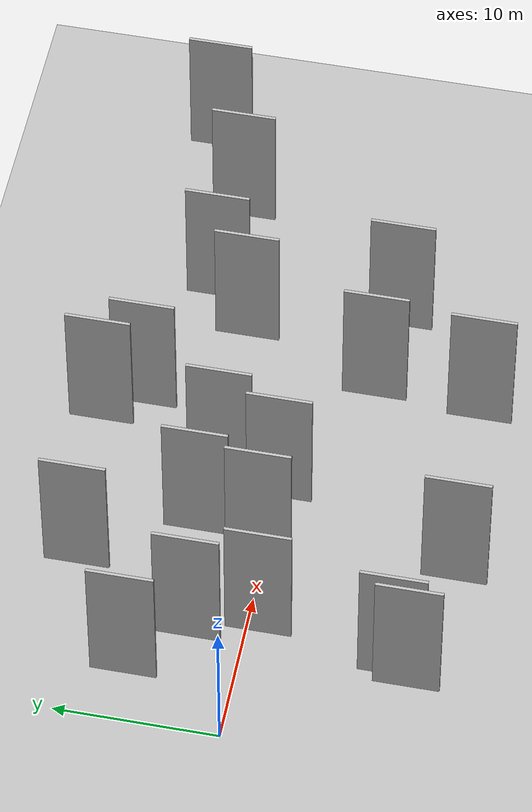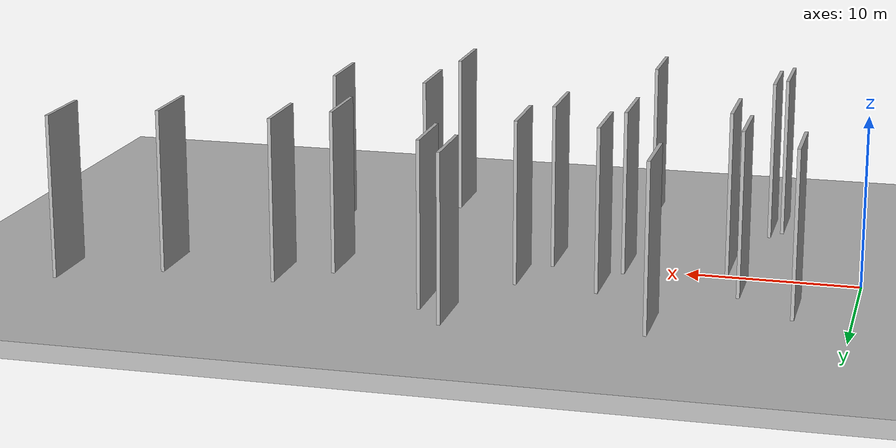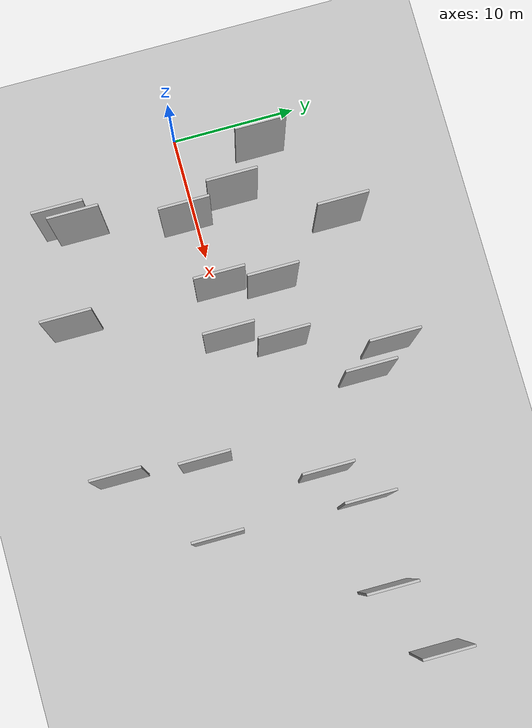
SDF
<?xml version="1.0" encoding="utf-8"?>

<sdf version="1.6">

   <world name="default">

      <gui fullscreen="0">

         <camera name="user_camera">

            <pose>-15 0 4.57585 0 0 0</pose>

            <view_controller>orbit</view_controller>

         </camera>

      </gui>

      <scene>

         <sky>

           <clouds>

             <speed>12</speed>

           </clouds>

         </sky>

         <ambient>0.4 0.4 0.4 1</ambient>

         <background>0.7 0.7 0.7 1</background>

         <shadows>1</shadows>

      </scene>

      <gravity>0 0 -9.8066</gravity>

      <magnetic_field>6e-06 2.3e-05 -4.2e-05</magnetic_field>

      <physics default="0" name="default_physics" type="ode">

         <ode>

            <solver>

               <type>quick</type>

               <iters>10</iters>

               <sor>1.0</sor>

               <use_dynamic_moi_rescaling>0</use_dynamic_moi_rescaling>

            </solver>

            <constraints>

               <cfm>0</cfm>

               <erp>0.2</erp>

               <contact_max_correcting_vel>100</contact_max_correcting_vel>

               <contact_surface_layer>0.001</contact_surface_layer>

            </constraints>

         </ode>

         <max_step_size>0.004</max_step_size>

         <real_time_factor>1</real_time_factor>

         <real_time_update_rate>250</real_time_update_rate>

      </physics>

      <light name="sun" type="directional">

         <cast_shadows>1</cast_shadows>

         <pose>0 0 10 0 0 0</pose>

         <diffuse>0.8 0.8 0.8 1</diffuse>

         <specular>0.2 0.2 0.2 1</specular>

         <attenuation>

            <range>1000</range>

            <constant>0.9</constant>

            <linear>0.01</linear>

            <quadratic>0.001</quadratic>

         </attenuation>

         <direction>-0.5 0.1 -0.9</direction>

      </light>

      <include>

         <name>ground_plane_1</name>

         <uri>model://HANNAS_ground_plane</uri>

         <pose>0 0 0  0 0 0</pose>

      </include>

      <include>

         <name>ground_plane_2</name>

         <uri>model://HANNAS_ground_plane</uri>

         <pose>100 0 0  0 0 0</pose>

      </include>

      <model name="HANNAS_wall_1">

         <static>1</static>

         <pose frame="">3.0790 6.3886 0.0 0.000000 0.000000 1.570796</pose>

         <link name="link">

            <pose frame="">0 0 5.00 0 0 0</pose>

            <collision name="collision">

               <geometry>

                  <box>

                     <size>4.00 0.2 10.00</size>

                  </box>

               </geometry>

               <max_contacts>10</max_contacts>

               <surface>

                  <contact>

                     <ode/>

                  </contact>

                  <bounce/>

                  <friction>

                     <torsional>

                        <ode/>

                     </torsional>

                     <ode/>

                  </friction>

               </surface>

            </collision>

            <visual name="visual">

               <cast_shadows>0</cast_shadows>

               <geometry>

                  <box>

                     <size>4.00 0.2 10.00</size>

                  </box>

               </geometry>

               <material>

                  <script>

                     <uri>model://HANNAS_wall/materials/scripts</uri>

                     <uri>model://HANNAS_wall/materials/textures</uri>

                     <name>vrc/HANNAS_wall</name>

                  </script>

               </material>

            </visual>

            <self_collide>0</self_collide>

            <enable_wind>0</enable_wind>

            <kinematic>0</kinematic>

         </link>

      </model>

      <model name="HANNAS_wall_2">

         <static>1</static>

         <pose frame="">21.2935 11.7495 0.0 0.000000 0.000000 1.570796</pose>

         <link name="link">

            <pose frame="">0 0 5.00 0 0 0</pose>

            <collision name="collision">

               <geometry>

                  <box>

                     <size>4.00 0.2 10.00</size>

                  </box>

               </geometry>

               <max_contacts>10</max_contacts>

               <surface>

                  <contact>

                     <ode/>

                  </contact>

                  <bounce/>

                  <friction>

                     <torsional>

                        <ode/>

                     </torsional>

                     <ode/>

                  </friction>

               </surface>

            </collision>

            <visual name="visual">

               <cast_shadows>0</cast_shadows>

               <geometry>

                  <box>

                     <size>4.00 0.2 10.00</size>

                  </box>

               </geometry>

               <material>

                  <script>

                     <uri>model://HANNAS_wall/materials/scripts</uri>

                     <uri>model://HANNAS_wall/materials/textures</uri>

                     <name>vrc/HANNAS_wall</name>

                  </script>

               </material>

            </visual>

            <self_collide>0</self_collide>

            <enable_wind>0</enable_wind>

            <kinematic>0</kinematic>

         </link>

      </model>

      <model name="HANNAS_wall_3">

         <static>1</static>

         <pose frame="">6.0209 -9.0118 0.0 0.000000 0.000000 1.570796</pose>

         <link name="link">

            <pose frame="">0 0 5.00 0 0 0</pose>

            <collision name="collision">

               <geometry>

                  <box>

                     <size>4.00 0.2 10.00</size>

                  </box>

               </geometry>

               <max_contacts>10</max_contacts>

               <surface>

                  <contact>

                     <ode/>

                  </contact>

                  <bounce/>

                  <friction>

                     <torsional>

                        <ode/>

                     </torsional>

                     <ode/>

                  </friction>

               </surface>

            </collision>

            <visual name="visual">

               <cast_shadows>0</cast_shadows>

               <geometry>

                  <box>

                     <size>4.00 0.2 10.00</size>

                  </box>

               </geometry>

               <material>

                  <script>

                     <uri>model://HANNAS_wall/materials/scripts</uri>

                     <uri>model://HANNAS_wall/materials/textures</uri>

                     <name>vrc/HANNAS_wall</name>

                  </script>

               </material>

            </visual>

            <self_collide>0</self_collide>

            <enable_wind>0</enable_wind>

            <kinematic>0</kinematic>

         </link>

      </model>

      <model name="HANNAS_wall_4">

         <static>1</static>

         <pose frame="">44.6418 9.0534 0.0 0.000000 0.000000 1.570796</pose>

         <link name="link">

            <pose frame="">0 0 5.00 0 0 0</pose>

            <collision name="collision">

               <geometry>

                  <box>

                     <size>4.00 0.2 10.00</size>

                  </box>

               </geometry>

               <max_contacts>10</max_contacts>

               <surface>

                  <contact>

                     <ode/>

                  </contact>

                  <bounce/>

                  <friction>

                     <torsional>

                        <ode/>

                     </torsional>

                     <ode/>

                  </friction>

               </surface>

            </collision>

            <visual name="visual">

               <cast_shadows>0</cast_shadows>

               <geometry>

                  <box>

                     <size>4.00 0.2 10.00</size>

                  </box>

               </geometry>

               <material>

                  <script>

                     <uri>model://HANNAS_wall/materials/scripts</uri>

                     <uri>model://HANNAS_wall/materials/textures</uri>

                     <name>vrc/HANNAS_wall</name>

                  </script>

               </material>

            </visual>

            <self_collide>0</self_collide>

            <enable_wind>0</enable_wind>

            <kinematic>0</kinematic>

         </link>

      </model>

      <model name="HANNAS_wall_5">

         <static>1</static>

         <pose frame="">13.3359 0.3821 0.0 0.000000 0.000000 1.570796</pose>

         <link name="link">

            <pose frame="">0 0 5.00 0 0 0</pose>

            <collision name="collision">

               <geometry>

                  <box>

                     <size>4.00 0.2 10.00</size>

                  </box>

               </geometry>

               <max_contacts>10</max_contacts>

               <surface>

                  <contact>

                     <ode/>

                  </contact>

                  <bounce/>

                  <friction>

                     <torsional>

                        <ode/>

                     </torsional>

                     <ode/>

                  </friction>

               </surface>

            </collision>

            <visual name="visual">

               <cast_shadows>0</cast_shadows>

               <geometry>

                  <box>

                     <size>4.00 0.2 10.00</size>

                  </box>

               </geometry>

               <material>

                  <script>

                     <uri>model://HANNAS_wall/materials/scripts</uri>

                     <uri>model://HANNAS_wall/materials/textures</uri>

                     <name>vrc/HANNAS_wall</name>

                  </script>

               </material>

            </visual>

            <self_collide>0</self_collide>

            <enable_wind>0</enable_wind>

            <kinematic>0</kinematic>

         </link>

      </model>

      <model name="HANNAS_wall_6">

         <static>1</static>

         <pose frame="">6.3872 3.2544 0.0 0.000000 0.000000 1.570796</pose>

         <link name="link">

            <pose frame="">0 0 5.00 0 0 0</pose>

            <collision name="collision">

               <geometry>

                  <box>

                     <size>4.00 0.2 10.00</size>

                  </box>

               </geometry>

               <max_contacts>10</max_contacts>

               <surface>

                  <contact>

                     <ode/>

                  </contact>

                  <bounce/>

                  <friction>

                     <torsional>

                        <ode/>

                     </torsional>

                     <ode/>

                  </friction>

               </surface>

            </collision>

            <visual name="visual">

               <cast_shadows>0</cast_shadows>

               <geometry>

                  <box>

                     <size>4.00 0.2 10.00</size>

                  </box>

               </geometry>

               <material>

                  <script>

                     <uri>model://HANNAS_wall/materials/scripts</uri>

                     <uri>model://HANNAS_wall/materials/textures</uri>

                     <name>vrc/HANNAS_wall</name>

                  </script>

               </material>

            </visual>

            <self_collide>0</self_collide>

            <enable_wind>0</enable_wind>

            <kinematic>0</kinematic>

         </link>

      </model>

      <model name="HANNAS_wall_7">

         <static>1</static>

         <pose frame="">29.4969 4.3070 0.0 0.000000 0.000000 1.570796</pose>

         <link name="link">

            <pose frame="">0 0 5.00 0 0 0</pose>

            <collision name="collision">

               <geometry>

                  <box>

                     <size>4.00 0.2 10.00</size>

                  </box>

               </geometry>

               <max_contacts>10</max_contacts>

               <surface>

                  <contact>

                     <ode/>

                  </contact>

                  <bounce/>

                  <friction>

                     <torsional>

                        <ode/>

                     </torsional>

                     <ode/>

                  </friction>

               </surface>

            </collision>

            <visual name="visual">

               <cast_shadows>0</cast_shadows>

               <geometry>

                  <box>

                     <size>4.00 0.2 10.00</size>

                  </box>

               </geometry>

               <material>

                  <script>

                     <uri>model://HANNAS_wall/materials/scripts</uri>

                     <uri>model://HANNAS_wall/materials/textures</uri>

                     <name>vrc/HANNAS_wall</name>

                  </script>

               </material>

            </visual>

            <self_collide>0</self_collide>

            <enable_wind>0</enable_wind>

            <kinematic>0</kinematic>

         </link>

      </model>

      <model name="HANNAS_wall_8">

         <static>1</static>

         <pose frame="">39.1029 6.4484 0.0 0.000000 0.000000 1.570796</pose>

         <link name="link">

            <pose frame="">0 0 5.00 0 0 0</pose>

            <collision name="collision">

               <geometry>

                  <box>

                     <size>4.00 0.2 10.00</size>

                  </box>

               </geometry>

               <max_contacts>10</max_contacts>

               <surface>

                  <contact>

                     <ode/>

                  </contact>

                  <bounce/>

                  <friction>

                     <torsional>

                        <ode/>

                     </torsional>

                     <ode/>

                  </friction>

               </surface>

            </collision>

            <visual name="visual">

               <cast_shadows>0</cast_shadows>

               <geometry>

                  <box>

                     <size>4.00 0.2 10.00</size>

                  </box>

               </geometry>

               <material>

                  <script>

                     <uri>model://HANNAS_wall/materials/scripts</uri>

                     <uri>model://HANNAS_wall/materials/textures</uri>

                     <name>vrc/HANNAS_wall</name>

                  </script>

               </material>

            </visual>

            <self_collide>0</self_collide>

            <enable_wind>0</enable_wind>

            <kinematic>0</kinematic>

         </link>

      </model>

      <model name="HANNAS_wall_9">

         <static>1</static>

         <pose frame="">5.3495 -10.0323 0.0 0.000000 0.000000 1.570796</pose>

         <link name="link">

            <pose frame="">0 0 5.00 0 0 0</pose>

            <collision name="collision">

               <geometry>

                  <box>

                     <size>4.00 0.2 10.00</size>

                  </box>

               </geometry>

               <max_contacts>10</max_contacts>

               <surface>

                  <contact>

                     <ode/>

                  </contact>

                  <bounce/>

                  <friction>

                     <torsional>

                        <ode/>

                     </torsional>

                     <ode/>

                  </friction>

               </surface>

            </collision>

            <visual name="visual">

               <cast_shadows>0</cast_shadows>

               <geometry>

                  <box>

                     <size>4.00 0.2 10.00</size>

                  </box>

               </geometry>

               <material>

                  <script>

                     <uri>model://HANNAS_wall/materials/scripts</uri>

                     <uri>model://HANNAS_wall/materials/textures</uri>

                     <name>vrc/HANNAS_wall</name>

                  </script>

               </material>

            </visual>

            <self_collide>0</self_collide>

            <enable_wind>0</enable_wind>

            <kinematic>0</kinematic>

         </link>

      </model>

      <model name="HANNAS_wall_10">

         <static>1</static>

         <pose frame="">26.3497 -4.2691 0.0 0.000000 0.000000 1.570796</pose>

         <link name="link">

            <pose frame="">0 0 5.00 0 0 0</pose>

            <collision name="collision">

               <geometry>

                  <box>

                     <size>4.00 0.2 10.00</size>

                  </box>

               </geometry>

               <max_contacts>10</max_contacts>

               <surface>

                  <contact>

                     <ode/>

                  </contact>

                  <bounce/>

                  <friction>

                     <torsional>

                        <ode/>

                     </torsional>

                     <ode/>

                  </friction>

               </surface>

            </collision>

            <visual name="visual">

               <cast_shadows>0</cast_shadows>

               <geometry>

                  <box>

                     <size>4.00 0.2 10.00</size>

                  </box>

               </geometry>

               <material>

                  <script>

                     <uri>model://HANNAS_wall/materials/scripts</uri>

                     <uri>model://HANNAS_wall/materials/textures</uri>

                     <name>vrc/HANNAS_wall</name>

                  </script>

               </material>

            </visual>

            <self_collide>0</self_collide>

            <enable_wind>0</enable_wind>

            <kinematic>0</kinematic>

         </link>

      </model>

      <model name="HANNAS_wall_11">

         <static>1</static>

         <pose frame="">13.5085 -11.4642 0.0 0.000000 0.000000 1.570796</pose>

         <link name="link">

            <pose frame="">0 0 5.00 0 0 0</pose>

            <collision name="collision">

               <geometry>

                  <box>

                     <size>4.00 0.2 10.00</size>

                  </box>

               </geometry>

               <max_contacts>10</max_contacts>

               <surface>

                  <contact>

                     <ode/>

                  </contact>

                  <bounce/>

                  <friction>

                     <torsional>

                        <ode/>

                     </torsional>

                     <ode/>

                  </friction>

               </surface>

            </collision>

            <visual name="visual">

               <cast_shadows>0</cast_shadows>

               <geometry>

                  <box>

                     <size>4.00 0.2 10.00</size>

                  </box>

               </geometry>

               <material>

                  <script>

                     <uri>model://HANNAS_wall/materials/scripts</uri>

                     <uri>model://HANNAS_wall/materials/textures</uri>

                     <name>vrc/HANNAS_wall</name>

                  </script>

               </material>

            </visual>

            <self_collide>0</self_collide>

            <enable_wind>0</enable_wind>

            <kinematic>0</kinematic>

         </link>

      </model>

      <model name="HANNAS_wall_12">

         <static>1</static>

         <pose frame="">10.3370 10.8229 0.0 0.000000 0.000000 1.570796</pose>

         <link name="link">

            <pose frame="">0 0 5.00 0 0 0</pose>

            <collision name="collision">

               <geometry>

                  <box>

                     <size>4.00 0.2 10.00</size>

                  </box>

               </geometry>

               <max_contacts>10</max_contacts>

               <surface>

                  <contact>

                     <ode/>

                  </contact>

                  <bounce/>

                  <friction>

                     <torsional>

                        <ode/>

                     </torsional>

                     <ode/>

                  </friction>

               </surface>

            </collision>

            <visual name="visual">

               <cast_shadows>0</cast_shadows>

               <geometry>

                  <box>

                     <size>4.00 0.2 10.00</size>

                  </box>

               </geometry>

               <material>

                  <script>

                     <uri>model://HANNAS_wall/materials/scripts</uri>

                     <uri>model://HANNAS_wall/materials/textures</uri>

                     <name>vrc/HANNAS_wall</name>

                  </script>

               </material>

            </visual>

            <self_collide>0</self_collide>

            <enable_wind>0</enable_wind>

            <kinematic>0</kinematic>

         </link>

      </model>

      <model name="HANNAS_wall_13">

         <static>1</static>

         <pose frame="">17.5504 -0.0511 0.0 0.000000 0.000000 1.570796</pose>

         <link name="link">

            <pose frame="">0 0 5.00 0 0 0</pose>

            <collision name="collision">

               <geometry>

                  <box>

                     <size>4.00 0.2 10.00</size>

                  </box>

               </geometry>

               <max_contacts>10</max_contacts>

               <surface>

                  <contact>

                     <ode/>

                  </contact>

                  <bounce/>

                  <friction>

                     <torsional>

                        <ode/>

                     </torsional>

                     <ode/>

                  </friction>

               </surface>

            </collision>

            <visual name="visual">

               <cast_shadows>0</cast_shadows>

               <geometry>

                  <box>

                     <size>4.00 0.2 10.00</size>

                  </box>

               </geometry>

               <material>

                  <script>

                     <uri>model://HANNAS_wall/materials/scripts</uri>

                     <uri>model://HANNAS_wall/materials/textures</uri>

                     <name>vrc/HANNAS_wall</name>

                  </script>

               </material>

            </visual>

            <self_collide>0</self_collide>

            <enable_wind>0</enable_wind>

            <kinematic>0</kinematic>

         </link>

      </model>

      <model name="HANNAS_wall_14">

         <static>1</static>

         <pose frame="">18.9187 3.8695 0.0 0.000000 0.000000 1.570796</pose>

         <link name="link">

            <pose frame="">0 0 5.00 0 0 0</pose>

            <collision name="collision">

               <geometry>

                  <box>

                     <size>4.00 0.2 10.00</size>

                  </box>

               </geometry>

               <max_contacts>10</max_contacts>

               <surface>

                  <contact>

                     <ode/>

                  </contact>

                  <bounce/>

                  <friction>

                     <torsional>

                        <ode/>

                     </torsional>

                     <ode/>

                  </friction>

               </surface>

            </collision>

            <visual name="visual">

               <cast_shadows>0</cast_shadows>

               <geometry>

                  <box>

                     <size>4.00 0.2 10.00</size>

                  </box>

               </geometry>

               <material>

                  <script>

                     <uri>model://HANNAS_wall/materials/scripts</uri>

                     <uri>model://HANNAS_wall/materials/textures</uri>

                     <name>vrc/HANNAS_wall</name>

                  </script>

               </material>

            </visual>

            <self_collide>0</self_collide>

            <enable_wind>0</enable_wind>

            <kinematic>0</kinematic>

         </link>

      </model>

      <model name="HANNAS_wall_15">

         <static>1</static>

         <pose frame="">23.0245 9.4255 0.0 0.000000 0.000000 1.570796</pose>

         <link name="link">

            <pose frame="">0 0 5.00 0 0 0</pose>

            <collision name="collision">

               <geometry>

                  <box>

                     <size>4.00 0.2 10.00</size>

                  </box>

               </geometry>

               <max_contacts>10</max_contacts>

               <surface>

                  <contact>

                     <ode/>

                  </contact>

                  <bounce/>

                  <friction>

                     <torsional>

                        <ode/>

                     </torsional>

                     <ode/>

                  </friction>

               </surface>

            </collision>

            <visual name="visual">

               <cast_shadows>0</cast_shadows>

               <geometry>

                  <box>

                     <size>4.00 0.2 10.00</size>

                  </box>

               </geometry>

               <material>

                  <script>

                     <uri>model://HANNAS_wall/materials/scripts</uri>

                     <uri>model://HANNAS_wall/materials/textures</uri>

                     <name>vrc/HANNAS_wall</name>

                  </script>

               </material>

            </visual>

            <self_collide>0</self_collide>

            <enable_wind>0</enable_wind>

            <kinematic>0</kinematic>

         </link>

      </model>

      <model name="HANNAS_wall_16">

         <static>1</static>

         <pose frame="">14.1607 4.3270 0.0 0.000000 0.000000 1.570796</pose>

         <link name="link">

            <pose frame="">0 0 5.00 0 0 0</pose>

            <collision name="collision">

               <geometry>

                  <box>

                     <size>4.00 0.2 10.00</size>

                  </box>

               </geometry>

               <max_contacts>10</max_contacts>

               <surface>

                  <contact>

                     <ode/>

                  </contact>

                  <bounce/>

                  <friction>

                     <torsional>

                        <ode/>

                     </torsional>

                     <ode/>

                  </friction>

               </surface>

            </collision>

            <visual name="visual">

               <cast_shadows>0</cast_shadows>

               <geometry>

                  <box>

                     <size>4.00 0.2 10.00</size>

                  </box>

               </geometry>

               <material>

                  <script>

                     <uri>model://HANNAS_wall/materials/scripts</uri>

                     <uri>model://HANNAS_wall/materials/textures</uri>

                     <name>vrc/HANNAS_wall</name>

                  </script>

               </material>

            </visual>

            <self_collide>0</self_collide>

            <enable_wind>0</enable_wind>

            <kinematic>0</kinematic>

         </link>

      </model>

      <model name="HANNAS_wall_17">

         <static>1</static>

         <pose frame="">25.8308 -10.8911 0.0 0.000000 0.000000 1.570796</pose>

         <link name="link">

            <pose frame="">0 0 5.00 0 0 0</pose>

            <collision name="collision">

               <geometry>

                  <box>

                     <size>4.00 0.2 10.00</size>

                  </box>

               </geometry>

               <max_contacts>10</max_contacts>

               <surface>

                  <contact>

                     <ode/>

                  </contact>

                  <bounce/>

                  <friction>

                     <torsional>

                        <ode/>

                     </torsional>

                     <ode/>

                  </friction>

               </surface>

            </collision>

            <visual name="visual">

               <cast_shadows>0</cast_shadows>

               <geometry>

                  <box>

                     <size>4.00 0.2 10.00</size>

                  </box>

               </geometry>

               <material>

                  <script>

                     <uri>model://HANNAS_wall/materials/scripts</uri>

                     <uri>model://HANNAS_wall/materials/textures</uri>

                     <name>vrc/HANNAS_wall</name>

                  </script>

               </material>

            </visual>

            <self_collide>0</self_collide>

            <enable_wind>0</enable_wind>

            <kinematic>0</kinematic>

         </link>

      </model>

      <model name="HANNAS_wall_18">

         <static>1</static>

         <pose frame="">32.1624 -4.8403 0.0 0.000000 0.000000 1.570796</pose>

         <link name="link">

            <pose frame="">0 0 5.00 0 0 0</pose>

            <collision name="collision">

               <geometry>

                  <box>

                     <size>4.00 0.2 10.00</size>

                  </box>

               </geometry>

               <max_contacts>10</max_contacts>

               <surface>

                  <contact>

                     <ode/>

                  </contact>

                  <bounce/>

                  <friction>

                     <torsional>

                        <ode/>

                     </torsional>

                     <ode/>

                  </friction>

               </surface>

            </collision>

            <visual name="visual">

               <cast_shadows>0</cast_shadows>

               <geometry>

                  <box>

                     <size>4.00 0.2 10.00</size>

                  </box>

               </geometry>

               <material>

                  <script>

                     <uri>model://HANNAS_wall/materials/scripts</uri>

                     <uri>model://HANNAS_wall/materials/textures</uri>

                     <name>vrc/HANNAS_wall</name>

                  </script>

               </material>

            </visual>

            <self_collide>0</self_collide>

            <enable_wind>0</enable_wind>

            <kinematic>0</kinematic>

         </link>

      </model>

      <model name="HANNAS_wall_19">

         <static>1</static>

         <pose frame="">7.5297 -0.7796 0.0 0.000000 0.000000 1.570796</pose>

         <link name="link">

            <pose frame="">0 0 5.00 0 0 0</pose>

            <collision name="collision">

               <geometry>

                  <box>

                     <size>4.00 0.2 10.00</size>

                  </box>

               </geometry>

               <max_contacts>10</max_contacts>

               <surface>

                  <contact>

                     <ode/>

                  </contact>

                  <bounce/>

                  <friction>

                     <torsional>

                        <ode/>

                     </torsional>

                     <ode/>

                  </friction>

               </surface>

            </collision>

            <visual name="visual">

               <cast_shadows>0</cast_shadows>

               <geometry>

                  <box>

                     <size>4.00 0.2 10.00</size>

                  </box>

               </geometry>

               <material>

                  <script>

                     <uri>model://HANNAS_wall/materials/scripts</uri>

                     <uri>model://HANNAS_wall/materials/textures</uri>

                     <name>vrc/HANNAS_wall</name>

                  </script>

               </material>

            </visual>

            <self_collide>0</self_collide>

            <enable_wind>0</enable_wind>

            <kinematic>0</kinematic>

         </link>

      </model>

      <model name="HANNAS_wall_20">

         <static>1</static>

         <pose frame="">32.3387 6.7196 0.0 0.000000 0.000000 1.570796</pose>

         <link name="link">

            <pose frame="">0 0 5.00 0 0 0</pose>

            <collision name="collision">

               <geometry>

                  <box>

                     <size>4.00 0.2 10.00</size>

                  </box>

               </geometry>

               <max_contacts>10</max_contacts>

               <surface>

                  <contact>

                     <ode/>

                  </contact>

                  <bounce/>

                  <friction>

                     <torsional>

                        <ode/>

                     </torsional>

                     <ode/>

                  </friction>

               </surface>

            </collision>

            <visual name="visual">

               <cast_shadows>0</cast_shadows>

               <geometry>

                  <box>

                     <size>4.00 0.2 10.00</size>

                  </box>

               </geometry>

               <material>

                  <script>

                     <uri>model://HANNAS_wall/materials/scripts</uri>

                     <uri>model://HANNAS_wall/materials/textures</uri>

                     <name>vrc/HANNAS_wall</name>

                  </script>

               </material>

            </visual>

            <self_collide>0</self_collide>

            <enable_wind>0</enable_wind>

            <kinematic>0</kinematic>

         </link>

      </model>

   </world>

</sdf>

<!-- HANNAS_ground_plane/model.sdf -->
<sdf version="1.4">
<model name="HANNAS_ground_plane">
  <static>true</static>
    <link name="link">
      <collision name="collision">
        <geometry>
          <plane>
            <normal>0 0 1</normal>
            <size>1000 1000</size>
          </plane>
        </geometry>
        <surface>
          <friction>
            <ode>
              <mu>100</mu>
              <mu2>50</mu2>
            </ode>
          </friction>
        </surface>
      </collision>
      <visual name="visual">
        <cast_shadows>false</cast_shadows>
        <geometry>
          <plane>
            <normal>0 0 1</normal>
            <size>1000 1000</size>
          </plane>
        </geometry>
        <material>
          <script>
            <uri>model://HANNAS_ground_plane/materials/scripts/HANNAS_ground_plane.material</uri>
	    <uri>model://HANNAS_ground_plane/materials/textures</uri>
            <name>HANNASGroundPlane/Image</name>
          </script>
        </material>
      </visual>
    </link>
  </model>
</sdf>
